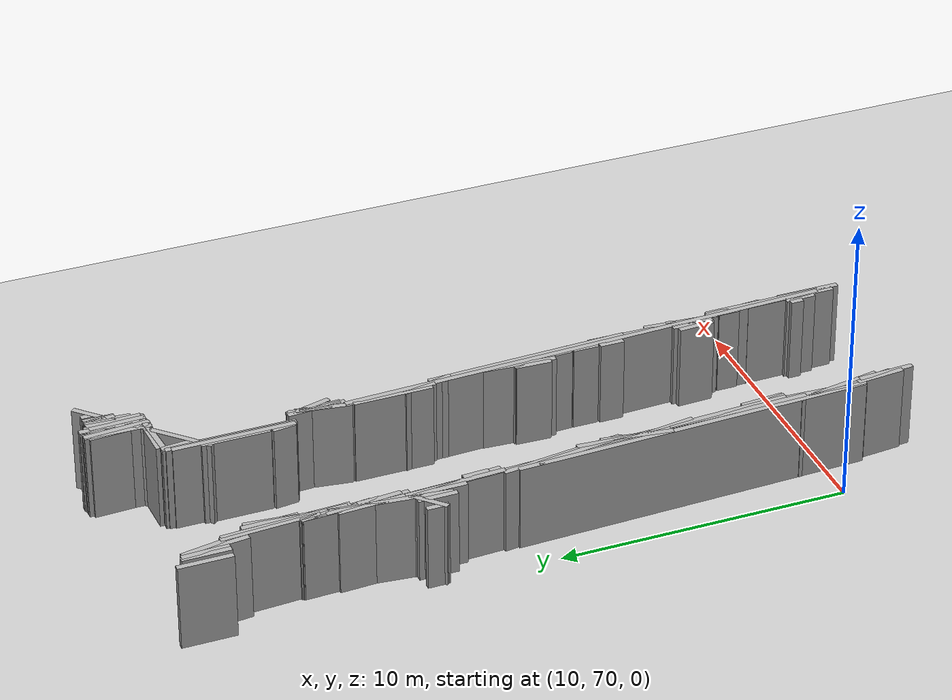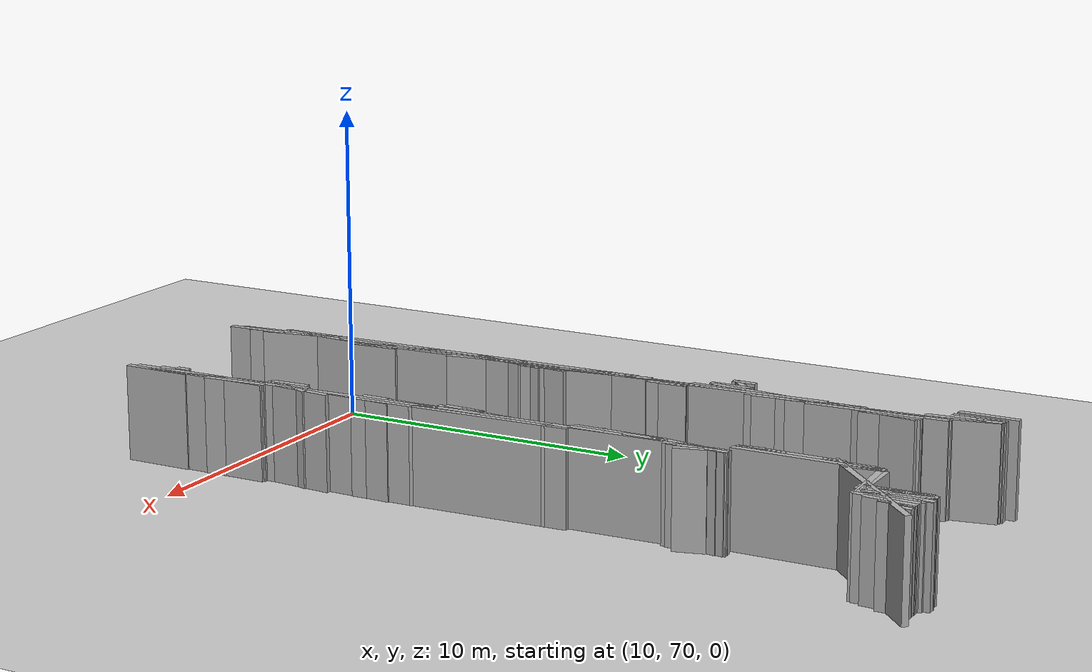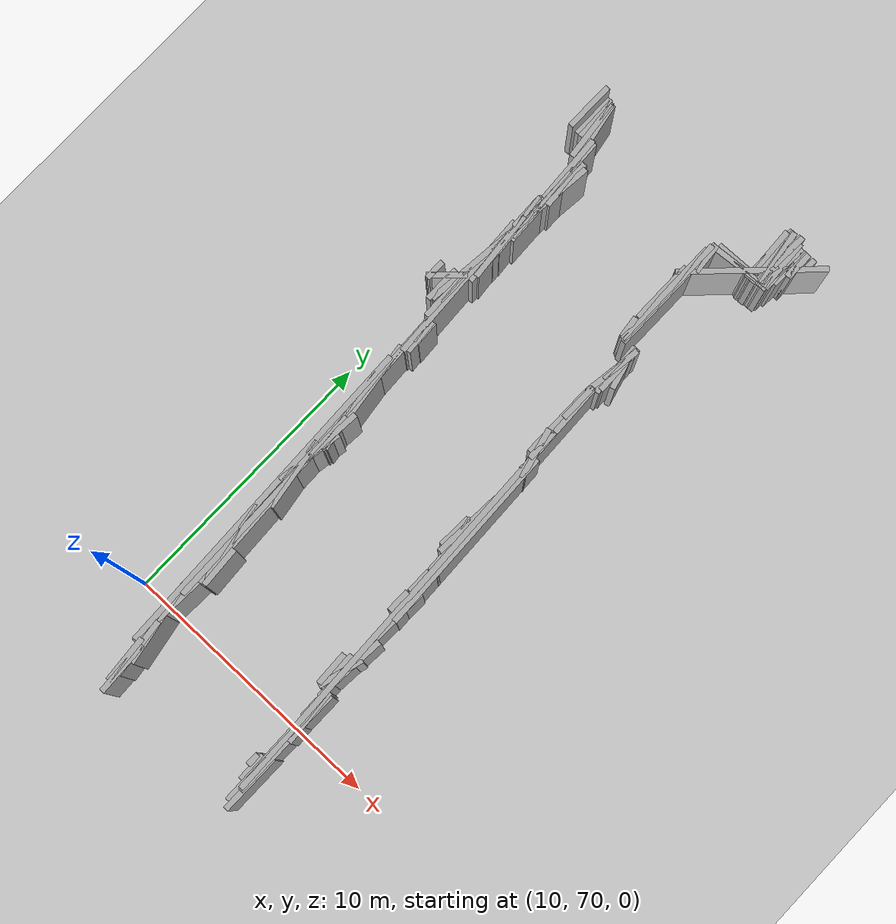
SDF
<sdf version="1.6">
 <world name="aboureyhan">
  <model name="ground_plane">
   <static>true</static>
   <link name="link">
    <collision name="collision">
     <geometry><plane><normal>0 0 1</normal><size>100 100</size></plane></geometry>
    </collision>
    <visual name="visual">
     <geometry><plane><normal>0 0 1</normal><size>500 500</size></plane></geometry>
     <material>
      <ambient>0.8 0.8 0.8 1</ambient>
      <diffuse>0.8 0.8 0.8 1</diffuse>
      <specular>0.8 0.8 0.8 1</specular>
     </material>
    </visual>
   </link>
  </model>
  <model name="wall_5">
   <static>true</static>
   <pose>11.900000000000002 67.67500000000001 1.5 0 0 -1.5195591593914772</pose>
   <link name="link">
    <collision name="collision">
     <geometry><box><size>1.9525624189766664 0.2 3.0</size></box></geometry>
    </collision>
    <visual name="visual">
     <geometry><box><size>1.9525624189766664 0.2 3.0</size></box></geometry>
     <material><ambient>0.5 0.5 0.5 1</ambient><diffuse>0.7 0.7 0.7 1</diffuse></material>
    </visual>
   </link>
  </model>
  <model name="wall_6">
   <static>true</static>
   <pose>17.05 76.175 1.5 0 0 -1.5360277349388143</pose>
   <link name="link">
    <collision name="collision">
     <geometry><box><size>17.260431628438496 0.2 3.0</size></box></geometry>
    </collision>
    <visual name="visual">
     <geometry><box><size>17.260431628438496 0.2 3.0</size></box></geometry>
     <material><ambient>0.5 0.5 0.5 1</ambient><diffuse>0.7 0.7 0.7 1</diffuse></material>
    </visual>
   </link>
  </model>
  <model name="wall_15">
   <static>true</static>
   <pose>17.125 78.275 1.5 0 0 -1.5353501865361818</pose>
   <link name="link">
    <collision name="collision"><geometry><box><size>7.054431231502647 0.2 3.0</size></box></geometry></collision>
    <visual name="visual">
     <geometry><box><size>7.054431231502647 0.2 3.0</size></box></geometry>
     <material><ambient>0.5 0.5 0.5 1</ambient><diffuse>0.7 0.7 0.7 1</diffuse></material>
    </visual>
   </link>
  </model>
  <model name="wall_35">
   <static>true</static>
   <pose>11.275 88.4 1.5 0 0 -1.5291537476963075</pose>
   <link name="link">
    <collision name="collision">
     <geometry><box><size>3.6031236448392883 0.2 3.0</size></box></geometry>
    </collision>
    <visual name="visual">
     <geometry><box><size>3.6031236448392883 0.2 3.0</size></box></geometry>
     <material><ambient>0.5 0.5 0.5 1</ambient><diffuse>0.7 0.7 0.7 1</diffuse></material>
    </visual>
   </link>
  </model>
  <model name="wall_40">
   <static>true</static>
   <pose>11.350000000000001 74.80000000000001 1.5 0 0 -1.5385494443596428</pose>
   <link name="link">
    <collision name="collision"><geometry><box><size>12.40644993541665 0.2 3.0</size></box></geometry></collision>
    <visual name="visual">
     <geometry><box><size>12.40644993541665 0.2 3.0</size></box></geometry>
     <material><ambient>0.5 0.5 0.5 1</ambient><diffuse>0.7 0.7 0.7 1</diffuse></material>
    </visual>
   </link>
  </model>
  <model name="wall_53">
   <static>true</static>
   <pose>11.375000000000002 89.25 1.5 0 0 -1.544486609541974</pose>
   <link name="link">
    <collision name="collision">
     <geometry><box><size>1.9006577808748268 0.2 3.0</size></box></geometry>
    </collision>
    <visual name="visual">
     <geometry><box><size>1.9006577808748268 0.2 3.0</size></box></geometry>
     <material><ambient>0.5 0.5 0.5 1</ambient><diffuse>0.7 0.7 0.7 1</diffuse></material>
    </visual>
   </link>
  </model>
  <model name="wall_55">
   <static>true</static>
   <pose>11.900000000000002 72.15 1.5 0 0 -1.504228163019072</pose>
   <link name="link">
    <collision name="collision"><geometry><box><size>1.503329637837291 0.2 3.0</size></box></geometry></collision>
    <visual name="visual">
     <geometry><box><size>1.503329637837291 0.2 3.0</size></box></geometry>
     <material><ambient>0.5 0.5 0.5 1</ambient><diffuse>0.7 0.7 0.7 1</diffuse></material>
    </visual>
   </link>
  </model>
  <model name="wall_63">
   <static>true</static>
   <pose>16.825000000000003 72.275 1.5 0 0 -1.530817639671606</pose>
   <link name="link">
    <collision name="collision">
     <geometry><box><size>1.2509996003196804 0.2 3.0</size></box></geometry>
    </collision>
    <visual name="visual">
     <geometry><box><size>1.2509996003196804 0.2 3.0</size></box></geometry>
     <material><ambient>0.5 0.5 0.5 1</ambient><diffuse>0.7 0.7 0.7 1</diffuse></material>
    </visual>
   </link>
  </model>
  <model name="wall_69">
   <static>true</static>
   <pose>11.425000000000002 79.4 1.5 0 0 -1.4405848838305002</pose>
   <link name="link">
    <collision name="collision"><geometry><box><size>4.235858826731603 0.2 3.0</size></box></geometry></collision>
    <visual name="visual">
     <geometry><box><size>4.235858826731603 0.2 3.0</size></box></geometry>
     <material><ambient>0.5 0.5 0.5 1</ambient><diffuse>0.7 0.7 0.7 1</diffuse></material>
    </visual>
   </link>
  </model>
  <model name="wall_99">
   <static>true</static>
   <pose>11.15 84.275 1.5 0 0 -1.5186696777492503</pose>
   <link name="link">
    <collision name="collision"><geometry><box><size>5.757820768311567 0.2 3.0</size></box></geometry></collision>
    <visual name="visual">
     <geometry><box><size>5.757820768311567 0.2 3.0</size></box></geometry>
     <material><ambient>0.5 0.5 0.5 1</ambient><diffuse>0.7 0.7 0.7 1</diffuse></material>
    </visual>
   </link>
  </model>
  <model name="wall_123">
   <static>true</static>
   <pose>10.725000000000001 91.22500000000001 1.5 0 0 -1.460139105621001</pose>
   <link name="link">
    <collision name="collision">
     <geometry><box><size>2.2638462845343543 0.2 3.0</size></box></geometry>
    </collision>
    <visual name="visual">
     <geometry><box><size>2.2638462845343543 0.2 3.0</size></box></geometry>
     <material><ambient>0.5 0.5 0.5 1</ambient><diffuse>0.7 0.7 0.7 1</diffuse></material>
    </visual>
   </link>
  </model>
  <model name="wall_131">
   <static>true</static>
   <pose>11.175 87.15 1.5 0 0 -1.4670039863378541</pose>
   <link name="link">
    <collision name="collision">
     <geometry><box><size>2.4129857024027364 0.2 3.0</size></box></geometry>
    </collision>
    <visual name="visual">
     <geometry><box><size>2.4129857024027364 0.2 3.0</size></box></geometry>
     <material><ambient>0.5 0.5 0.5 1</ambient><diffuse>0.7 0.7 0.7 1</diffuse></material>
    </visual>
   </link>
  </model>
  <model name="wall_160">
   <static>true</static>
   <pose>18.6 92.075 1.5 0 0 -1.5707963267948966</pose>
   <link name="link">
    <collision name="collision">
     <geometry><box><size>1.8500000000000227 0.2 3.0</size></box></geometry>
    </collision>
    <visual name="visual">
     <geometry><box><size>1.8500000000000227 0.2 3.0</size></box></geometry>
     <material><ambient>0.5 0.5 0.5 1</ambient><diffuse>0.7 0.7 0.7 1</diffuse></material>
    </visual>
   </link>
  </model>
  <model name="wall_170">
   <static>true</static>
   <pose>16.35 88.85 1.5 0 0 1.5707963267948966</pose>
   <link name="link">
    <collision name="collision">
     <geometry><box><size>4.3999999999999915 0.2 3.0</size></box></geometry>
    </collision>
    <visual name="visual">
     <geometry><box><size>4.3999999999999915 0.2 3.0</size></box></geometry>
     <material><ambient>0.5 0.5 0.5 1</ambient><diffuse>0.7 0.7 0.7 1</diffuse></material>
    </visual>
   </link>
  </model>
  <model name="wall_178">
   <static>true</static>
   <pose>11.05 83.75 1.5 0 0 -1.5707963267948966</pose>
   <link name="link">
    <collision name="collision">
     <geometry><box><size>1.9000000000000057 0.2 3.0</size></box></geometry>
    </collision>
    <visual name="visual">
     <geometry><box><size>1.9000000000000057 0.2 3.0</size></box></geometry>
     <material><ambient>0.5 0.5 0.5 1</ambient><diffuse>0.7 0.7 0.7 1</diffuse></material>
    </visual>
   </link>
  </model>
  <model name="wall_187">
   <static>true</static>
   <pose>18.275 92.225 1.5 0 0 1.5475447039844334</pose>
   <link name="link">
    <collision name="collision">
     <geometry><box><size>2.1505813167606624 0.2 3.0</size></box></geometry>
    </collision>
    <visual name="visual">
     <geometry><box><size>2.1505813167606624 0.2 3.0</size></box></geometry>
     <material><ambient>0.5 0.5 0.5 1</ambient><diffuse>0.7 0.7 0.7 1</diffuse></material>
    </visual>
   </link>
  </model>
  <model name="wall_194">
   <static>true</static>
   <pose>11.575000000000001 74.625 1.5 0 0 -1.5516903716764554</pose>
   <link name="link">
    <collision name="collision"><geometry><box><size>7.851432990225409 0.2 3.0</size></box></geometry></collision>
    <visual name="visual">
     <geometry><box><size>7.851432990225409 0.2 3.0</size></box></geometry>
     <material><ambient>0.5 0.5 0.5 1</ambient><diffuse>0.7 0.7 0.7 1</diffuse></material>
    </visual>
   </link>
  </model>
  <model name="wall_205">
   <static>true</static>
   <pose>17.400000000000002 69.575 1.5 0 0 1.5707963267948966</pose>
   <link name="link">
    <collision name="collision"><geometry><box><size>4.150000000000006 0.2 3.0</size></box></geometry></collision>
    <visual name="visual">
     <geometry><box><size>4.150000000000006 0.2 3.0</size></box></geometry>
     <material><ambient>0.5 0.5 0.5 1</ambient><diffuse>0.7 0.7 0.7 1</diffuse></material>
    </visual>
   </link>
  </model>
  <model name="wall_208">
   <static>true</static>
   <pose>16.200000000000003 87.1 1.5 0 0 -1.4464413322481373</pose>
   <link name="link">
    <collision name="collision">
     <geometry><box><size>0.8062257748298519 0.2 3.0</size></box></geometry>
    </collision>
    <visual name="visual">
     <geometry><box><size>0.8062257748298519 0.2 3.0</size></box></geometry>
     <material><ambient>0.5 0.5 0.5 1</ambient><diffuse>0.7 0.7 0.7 1</diffuse></material>
    </visual>
   </link>
  </model>
  <model name="wall_213">
   <static>true</static>
   <pose>18.85 92.47500000000001 1.5 0 0 -1.5707963267948966</pose>
   <link name="link">
    <collision name="collision">
     <geometry><box><size>1.0500000000000114 0.2 3.0</size></box></geometry>
    </collision>
    <visual name="visual">
     <geometry><box><size>1.0500000000000114 0.2 3.0</size></box></geometry>
     <material><ambient>0.5 0.5 0.5 1</ambient><diffuse>0.7 0.7 0.7 1</diffuse></material>
    </visual>
   </link>
  </model>
  <model name="wall_215">
   <static>true</static>
   <pose>16.800000000000004 85.65 1.5 0 0 1.428899272190732</pose>
   <link name="link">
    <collision name="collision"><geometry><box><size>2.121320343559637 0.2 3.0</size></box></geometry></collision>
    <visual name="visual">
     <geometry><box><size>2.121320343559637 0.2 3.0</size></box></geometry>
     <material><ambient>0.5 0.5 0.5 1</ambient><diffuse>0.7 0.7 0.7 1</diffuse></material>
    </visual>
   </link>
  </model>
  <model name="wall_220">
   <static>true</static>
   <pose>16.3 88.75 1.5 0 0 1.5707963267948966</pose>
   <link name="link">
    <collision name="collision"><geometry><box><size>4.200000000000003 0.2 3.0</size></box></geometry></collision>
    <visual name="visual">
     <geometry><box><size>4.200000000000003 0.2 3.0</size></box></geometry>
     <material><ambient>0.5 0.5 0.5 1</ambient><diffuse>0.7 0.7 0.7 1</diffuse></material>
    </visual>
   </link>
  </model>
  <model name="wall_229">
   <static>true</static>
   <pose>16.900000000000002 75.325 1.5 0 0 -1.5707963267948966</pose>
   <link name="link">
    <collision name="collision">
     <geometry><box><size>0.8499999999999943 0.2 3.0</size></box></geometry>
    </collision>
    <visual name="visual">
     <geometry><box><size>0.8499999999999943 0.2 3.0</size></box></geometry>
     <material><ambient>0.5 0.5 0.5 1</ambient><diffuse>0.7 0.7 0.7 1</diffuse></material>
    </visual>
   </link>
  </model>
  <model name="wall_232">
   <static>true</static>
   <pose>18.325000000000003 92.6 1.5 0 0 1.5350972141155723</pose>
   <link name="link">
    <collision name="collision">
     <geometry><box><size>1.4008925726121957 0.2 3.0</size></box></geometry>
    </collision>
    <visual name="visual">
     <geometry><box><size>1.4008925726121957 0.2 3.0</size></box></geometry>
     <material><ambient>0.5 0.5 0.5 1</ambient><diffuse>0.7 0.7 0.7 1</diffuse></material>
    </visual>
   </link>
  </model>
  <model name="wall_237">
   <static>true</static>
   <pose>16.85 85.75 1.5 0 0 -1.5208379310729532</pose>
   <link name="link">
    <collision name="collision">
     <geometry><box><size>2.0024984394500787 0.2 3.0</size></box></geometry>
    </collision>
    <visual name="visual">
     <geometry><box><size>2.0024984394500787 0.2 3.0</size></box></geometry>
     <material><ambient>0.5 0.5 0.5 1</ambient><diffuse>0.7 0.7 0.7 1</diffuse></material>
    </visual>
   </link>
  </model>
  <model name="wall_244">
   <static>true</static>
   <pose>11.55 76.0 1.5 0 0 -1.4181469983996318</pose>
   <link name="link">
    <collision name="collision"><geometry><box><size>2.630589287593175 0.2 3.0</size></box></geometry></collision>
    <visual name="visual">
     <geometry><box><size>2.630589287593175 0.2 3.0</size></box></geometry>
     <material><ambient>0.5 0.5 0.5 1</ambient><diffuse>0.7 0.7 0.7 1</diffuse></material>
    </visual>
   </link>
  </model>
  <model name="wall_245">
   <static>true</static>
   <pose>17.0 68.475 1.5 0 0 1.5707963267948966</pose>
   <link name="link">
    <collision name="collision">
     <geometry><box><size>0.45000000000000284 0.2 3.0</size></box></geometry>
    </collision>
    <visual name="visual">
     <geometry><box><size>0.45000000000000284 0.2 3.0</size></box></geometry>
     <material><ambient>0.5 0.5 0.5 1</ambient><diffuse>0.7 0.7 0.7 1</diffuse></material>
    </visual>
   </link>
  </model>
  <model name="wall_252">
   <static>true</static>
   <pose>16.650000000000002 83.175 1.5 0 0 1.5707963267948966</pose>
   <link name="link">
    <collision name="collision"><geometry><box><size>2.75 0.2 3.0</size></box></geometry></collision>
    <visual name="visual">
     <geometry><box><size>2.75 0.2 3.0</size></box></geometry>
     <material><ambient>0.5 0.5 0.5 1</ambient><diffuse>0.7 0.7 0.7 1</diffuse></material>
    </visual>
   </link>
  </model>
  <model name="wall_257">
   <static>true</static>
   <pose>18.5 92.075 1.5 0 0 -1.5220544754849663</pose>
   <link name="link">
    <collision name="collision">
     <geometry><box><size>2.0524375751773904 0.2 3.0</size></box></geometry>
    </collision>
    <visual name="visual">
     <geometry><box><size>2.0524375751773904 0.2 3.0</size></box></geometry>
     <material><ambient>0.5 0.5 0.5 1</ambient><diffuse>0.7 0.7 0.7 1</diffuse></material>
    </visual>
   </link>
  </model>
  <model name="wall_267">
   <static>true</static>
   <pose>17.925000000000004 92.12500000000001 1.5 0 0 1.5485777614681773</pose>
   <link name="link">
    <collision name="collision"><geometry><box><size>2.25055548698538 0.2 3.0</size></box></geometry></collision>
    <visual name="visual">
     <geometry><box><size>2.25055548698538 0.2 3.0</size></box></geometry>
     <material><ambient>0.5 0.5 0.5 1</ambient><diffuse>0.7 0.7 0.7 1</diffuse></material>
    </visual>
   </link>
  </model>
  <model name="wall_274">
   <static>true</static>
   <pose>16.675000000000004 78.22500000000001 1.5 0 0 1.530817639671606</pose>
   <link name="link">
    <collision name="collision">
     <geometry><box><size>1.2509996003196804 0.2 3.0</size></box></geometry>
    </collision>
    <visual name="visual">
     <geometry><box><size>1.2509996003196804 0.2 3.0</size></box></geometry>
     <material><ambient>0.5 0.5 0.5 1</ambient><diffuse>0.7 0.7 0.7 1</diffuse></material>
    </visual>
   </link>
  </model>
  <model name="wall_284">
   <static>true</static>
   <pose>11.225000000000001 86.2 1.5 0 0 -1.4749371796848831</pose>
   <link name="link">
    <collision name="collision">
     <geometry><box><size>2.6119915773217897 0.2 3.0</size></box></geometry>
    </collision>
    <visual name="visual">
     <geometry><box><size>2.6119915773217897 0.2 3.0</size></box></geometry>
     <material><ambient>0.5 0.5 0.5 1</ambient><diffuse>0.7 0.7 0.7 1</diffuse></material>
    </visual>
   </link>
  </model>
  <model name="wall_289">
   <static>true</static>
   <pose>11.650000000000002 72.9 1.5 0 0 -1.410883203636677</pose>
   <link name="link">
    <collision name="collision">
     <geometry><box><size>3.1400636936215105 0.2 3.0</size></box></geometry>
    </collision>
    <visual name="visual">
     <geometry><box><size>3.1400636936215105 0.2 3.0</size></box></geometry>
     <material><ambient>0.5 0.5 0.5 1</ambient><diffuse>0.7 0.7 0.7 1</diffuse></material>
    </visual>
   </link>
  </model>
  <model name="wall_291">
   <static>true</static>
   <pose>17.200000000000003 70.925 1.5 0 0 1.5707963267948966</pose>
   <link name="link">
    <collision name="collision"><geometry><box><size>0.75 0.2 3.0</size></box></geometry></collision>
    <visual name="visual">
     <geometry><box><size>0.75 0.2 3.0</size></box></geometry>
     <material><ambient>0.5 0.5 0.5 1</ambient><diffuse>0.7 0.7 0.7 1</diffuse></material>
    </visual>
   </link>
  </model>
  <model name="wall_301">
   <static>true</static>
   <pose>11.200000000000001 88.825 1.5 0 0 -1.5237721949521505</pose>
   <link name="link">
    <collision name="collision"><geometry><box><size>4.254703279900961 0.2 3.0</size></box></geometry></collision>
    <visual name="visual">
     <geometry><box><size>4.254703279900961 0.2 3.0</size></box></geometry>
     <material><ambient>0.5 0.5 0.5 1</ambient><diffuse>0.7 0.7 0.7 1</diffuse></material>
    </visual>
   </link>
  </model>
  <model name="wall_342">
   <static>true</static>
   <pose>16.400000000000002 88.875 1.5 0 0 1.5707963267948966</pose>
   <link name="link">
    <collision name="collision"><geometry><box><size>4.549999999999983 0.2 3.0</size></box></geometry></collision>
    <visual name="visual">
     <geometry><box><size>4.549999999999983 0.2 3.0</size></box></geometry>
     <material><ambient>0.5 0.5 0.5 1</ambient><diffuse>0.7 0.7 0.7 1</diffuse></material>
    </visual>
   </link>
  </model>
  <model name="wall_355">
   <static>true</static>
   <pose>17.0 72.325 1.5 0 0 -1.5707963267948966</pose>
   <link name="link">
    <collision name="collision">
     <geometry><box><size>1.4499999999999886 0.2 3.0</size></box></geometry>
    </collision>
    <visual name="visual">
     <geometry><box><size>1.4499999999999886 0.2 3.0</size></box></geometry>
     <material><ambient>0.5 0.5 0.5 1</ambient><diffuse>0.7 0.7 0.7 1</diffuse></material>
    </visual>
   </link>
  </model>
  <model name="wall_364">
   <static>true</static>
   <pose>18.75 92.22500000000001 1.5 0 0 1.506369487369345</pose>
   <link name="link">
    <collision name="collision"><geometry><box><size>1.553222456700918 0.2 3.0</size></box></geometry></collision>
    <visual name="visual">
     <geometry><box><size>1.553222456700918 0.2 3.0</size></box></geometry>
     <material><ambient>0.5 0.5 0.5 1</ambient><diffuse>0.7 0.7 0.7 1</diffuse></material>
    </visual>
   </link>
  </model>
  <model name="wall_374">
   <static>true</static>
   <pose>16.925000000000004 85.825 1.5 0 0 -1.5437758776076314</pose>
   <link name="link">
    <collision name="collision"><geometry><box><size>1.850675552332169 0.2 3.0</size></box></geometry></collision>
    <visual name="visual">
     <geometry><box><size>1.850675552332169 0.2 3.0</size></box></geometry>
     <material><ambient>0.5 0.5 0.5 1</ambient><diffuse>0.7 0.7 0.7 1</diffuse></material>
    </visual>
   </link>
  </model>
  <model name="wall_384">
   <static>true</static>
   <pose>11.425 78.75 1.5 0 0 -1.4266419396817411</pose>
   <link name="link">
    <collision name="collision">
     <geometry><box><size>3.1324910215354116 0.2 3.0</size></box></geometry>
    </collision>
    <visual name="visual">
     <geometry><box><size>3.1324910215354116 0.2 3.0</size></box></geometry>
     <material><ambient>0.5 0.5 0.5 1</ambient><diffuse>0.7 0.7 0.7 1</diffuse></material>
    </visual>
   </link>
  </model>
  <model name="wall_391">
   <static>true</static>
   <pose>10.600000000000001 84.275 1.5 0 0 0.7597627548757723</pose>
   <link name="link">
    <collision name="collision">
     <geometry><box><size>1.3793114224133742 0.2 3.0</size></box></geometry>
    </collision>
    <visual name="visual">
     <geometry><box><size>1.3793114224133742 0.2 3.0</size></box></geometry>
     <material><ambient>0.5 0.5 0.5 1</ambient><diffuse>0.7 0.7 0.7 1</diffuse></material>
    </visual>
   </link>
  </model>
  <model name="wall_423">
   <static>true</static>
   <pose>18.425000000000004 92.0 1.5 0 0 -1.544486609541974</pose>
   <link name="link">
    <collision name="collision">
     <geometry><box><size>1.9006577808748268 0.2 3.0</size></box></geometry>
    </collision>
    <visual name="visual">
     <geometry><box><size>1.9006577808748268 0.2 3.0</size></box></geometry>
     <material><ambient>0.5 0.5 0.5 1</ambient><diffuse>0.7 0.7 0.7 1</diffuse></material>
    </visual>
   </link>
  </model>
  <model name="wall_426">
   <static>true</static>
   <pose>16.925000000000004 77.825 1.5 0 0 -1.5475447039844334</pose>
   <link name="link">
    <collision name="collision">
     <geometry><box><size>2.1505813167606624 0.2 3.0</size></box></geometry>
    </collision>
    <visual name="visual">
     <geometry><box><size>2.1505813167606624 0.2 3.0</size></box></geometry>
     <material><ambient>0.5 0.5 0.5 1</ambient><diffuse>0.7 0.7 0.7 1</diffuse></material>
    </visual>
   </link>
  </model>
  <model name="wall_428">
   <static>true</static>
   <pose>18.075000000000003 92.12500000000001 1.5 0 0 -1.504228163019072</pose>
   <link name="link">
    <collision name="collision">
     <geometry><box><size>2.2549944567559366 0.2 3.0</size></box></geometry>
    </collision>
    <visual name="visual">
     <geometry><box><size>2.2549944567559366 0.2 3.0</size></box></geometry>
     <material><ambient>0.5 0.5 0.5 1</ambient><diffuse>0.7 0.7 0.7 1</diffuse></material>
    </visual>
   </link>
  </model>
  <model name="wall_433">
   <static>true</static>
   <pose>16.700000000000003 84.1 1.5 0 0 -1.5707963267948966</pose>
   <link name="link">
    <collision name="collision">
     <geometry><box><size>1.3999999999999915 0.2 3.0</size></box></geometry>
    </collision>
    <visual name="visual">
     <geometry><box><size>1.3999999999999915 0.2 3.0</size></box></geometry>
     <material><ambient>0.5 0.5 0.5 1</ambient><diffuse>0.7 0.7 0.7 1</diffuse></material>
    </visual>
   </link>
  </model>
  <model name="wall_438">
   <static>true</static>
   <pose>11.1 89.32500000000002 1.5 0 0 -1.5111656136637277</pose>
   <link name="link">
    <collision name="collision">
     <geometry><box><size>3.3559648389099754 0.2 3.0</size></box></geometry>
    </collision>
    <visual name="visual">
     <geometry><box><size>3.3559648389099754 0.2 3.0</size></box></geometry>
     <material><ambient>0.5 0.5 0.5 1</ambient><diffuse>0.7 0.7 0.7 1</diffuse></material>
    </visual>
   </link>
  </model>
  <model name="wall_446">
   <static>true</static>
   <pose>10.7 83.92500000000001 1.5 0 0 -1.5707963267948966</pose>
   <link name="link">
    <collision name="collision">
     <geometry><box><size>1.3500000000000085 0.2 3.0</size></box></geometry>
    </collision>
    <visual name="visual">
     <geometry><box><size>1.3500000000000085 0.2 3.0</size></box></geometry>
     <material><ambient>0.5 0.5 0.5 1</ambient><diffuse>0.7 0.7 0.7 1</diffuse></material>
    </visual>
   </link>
  </model>
  <model name="wall_473">
   <static>true</static>
   <pose>11.700000000000001 73.47500000000001 1.5 0 0 -1.5237721949521505</pose>
   <link name="link">
    <collision name="collision"><geometry><box><size>4.254703279900961 0.2 3.0</size></box></geometry></collision>
    <visual name="visual">
     <geometry><box><size>4.254703279900961 0.2 3.0</size></box></geometry>
     <material><ambient>0.5 0.5 0.5 1</ambient><diffuse>0.7 0.7 0.7 1</diffuse></material>
    </visual>
   </link>
  </model>
  <model name="wall_537">
   <static>true</static>
   <pose>11.200000000000001 86.525 1.5 0 0 -1.5175134752352042</pose>
   <link name="link">
    <collision name="collision">
     <geometry><box><size>3.7553295461250658 0.2 3.0</size></box></geometry>
    </collision>
    <visual name="visual">
     <geometry><box><size>3.7553295461250658 0.2 3.0</size></box></geometry>
     <material><ambient>0.5 0.5 0.5 1</ambient><diffuse>0.7 0.7 0.7 1</diffuse></material>
    </visual>
   </link>
  </model>
  <model name="wall_558">
   <static>true</static>
   <pose>16.8 82.25 1.5 0 0 1.5707963267948966</pose>
   <link name="link">
    <collision name="collision">
     <geometry><box><size>1.2000000000000028 0.2 3.0</size></box></geometry>
    </collision>
    <visual name="visual">
     <geometry><box><size>1.2000000000000028 0.2 3.0</size></box></geometry>
     <material><ambient>0.5 0.5 0.5 1</ambient><diffuse>0.7 0.7 0.7 1</diffuse></material>
    </visual>
   </link>
  </model>
  <model name="wall_562">
   <static>true</static>
   <pose>19.150000000000002 92.80000000000001 1.5 0 0 -1.5707963267948966</pose>
   <link name="link">
    <collision name="collision">
     <geometry><box><size>0.4000000000000057 0.2 3.0</size></box></geometry>
    </collision>
    <visual name="visual">
     <geometry><box><size>0.4000000000000057 0.2 3.0</size></box></geometry>
     <material><ambient>0.5 0.5 0.5 1</ambient><diffuse>0.7 0.7 0.7 1</diffuse></material>
    </visual>
   </link>
  </model>
  <model name="wall_565">
   <static>true</static>
   <pose>11.275 81.075 1.5 0 0 -1.5244718760942901</pose>
   <link name="link">
    <collision name="collision"><geometry><box><size>7.558108228915498 0.2 3.0</size></box></geometry></collision>
    <visual name="visual">
     <geometry><box><size>7.558108228915498 0.2 3.0</size></box></geometry>
     <material><ambient>0.5 0.5 0.5 1</ambient><diffuse>0.7 0.7 0.7 1</diffuse></material>
    </visual>
   </link>
  </model>
  <model name="wall_567">
   <static>true</static>
   <pose>17.525 91.125 1.5 0 0 0.07677189126978097</pose>
   <link name="link">
    <collision name="collision">
     <geometry><box><size>1.9557607215607944 0.2 3.0</size></box></geometry>
    </collision>
    <visual name="visual">
     <geometry><box><size>1.9557607215607944 0.2 3.0</size></box></geometry>
     <material><ambient>0.5 0.5 0.5 1</ambient><diffuse>0.7 0.7 0.7 1</diffuse></material>
    </visual>
   </link>
  </model>
  <model name="wall_570">
   <static>true</static>
   <pose>10.875000000000002 91.10000000000001 1.5 0 0 -1.3927033885636992</pose>
   <link name="link">
    <collision name="collision">
     <geometry><box><size>2.5401771591761073 0.2 3.0</size></box></geometry>
    </collision>
    <visual name="visual">
     <geometry><box><size>2.5401771591761073 0.2 3.0</size></box></geometry>
     <material><ambient>0.5 0.5 0.5 1</ambient><diffuse>0.7 0.7 0.7 1</diffuse></material>
    </visual>
   </link>
  </model>
  <model name="wall_573">
   <static>true</static>
   <pose>17.25 72.65 1.5 0 0 1.4940244355251187</pose>
   <link name="link">
    <collision name="collision">
     <geometry><box><size>2.6076809620810537 0.2 3.0</size></box></geometry>
    </collision>
    <visual name="visual">
     <geometry><box><size>2.6076809620810537 0.2 3.0</size></box></geometry>
     <material><ambient>0.5 0.5 0.5 1</ambient><diffuse>0.7 0.7 0.7 1</diffuse></material>
    </visual>
   </link>
  </model>
  <model name="wall_580">
   <static>true</static>
   <pose>11.075000000000001 87.65 1.5 0 0 -1.532353736773708</pose>
   <link name="link">
    <collision name="collision"><geometry><box><size>1.300961183125766 0.2 3.0</size></box></geometry></collision>
    <visual name="visual">
     <geometry><box><size>1.300961183125766 0.2 3.0</size></box></geometry>
     <material><ambient>0.5 0.5 0.5 1</ambient><diffuse>0.7 0.7 0.7 1</diffuse></material>
    </visual>
   </link>
  </model>
  <model name="wall_583">
   <static>true</static>
   <pose>18.900000000000002 92.47500000000001 1.5 0 0 1.5707963267948966</pose>
   <link name="link">
    <collision name="collision">
     <geometry><box><size>1.0500000000000114 0.2 3.0</size></box></geometry>
    </collision>
    <visual name="visual">
     <geometry><box><size>1.0500000000000114 0.2 3.0</size></box></geometry>
     <material><ambient>0.5 0.5 0.5 1</ambient><diffuse>0.7 0.7 0.7 1</diffuse></material>
    </visual>
   </link>
  </model>
  <model name="wall_584">
   <static>true</static>
   <pose>17.150000000000002 68.275 1.5 0 0 1.5707963267948966</pose>
   <link name="link">
    <collision name="collision">
     <geometry><box><size>1.0499999999999972 0.2 3.0</size></box></geometry>
    </collision>
    <visual name="visual">
     <geometry><box><size>1.0499999999999972 0.2 3.0</size></box></geometry>
     <material><ambient>0.5 0.5 0.5 1</ambient><diffuse>0.7 0.7 0.7 1</diffuse></material>
    </visual>
   </link>
  </model>
  <model name="wall_593">
   <static>true</static>
   <pose>16.975 77.80000000000001 1.5 0 0 -1.3690339824746085</pose>
   <link name="link">
    <collision name="collision"><geometry><box><size>2.245551157288565 0.2 3.0</size></box></geometry></collision>
    <visual name="visual">
     <geometry><box><size>2.245551157288565 0.2 3.0</size></box></geometry>
     <material><ambient>0.5 0.5 0.5 1</ambient><diffuse>0.7 0.7 0.7 1</diffuse></material>
    </visual>
   </link>
  </model>
  <model name="wall_594">
   <static>true</static>
   <pose>16.200000000000003 88.725 1.5 0 0 1.5707963267948966</pose>
   <link name="link">
    <collision name="collision">
     <geometry><box><size>2.3499999999999943 0.2 3.0</size></box></geometry>
    </collision>
    <visual name="visual">
     <geometry><box><size>2.3499999999999943 0.2 3.0</size></box></geometry>
     <material><ambient>0.5 0.5 0.5 1</ambient><diffuse>0.7 0.7 0.7 1</diffuse></material>
    </visual>
   </link>
  </model>
  <model name="wall_599">
   <static>true</static>
   <pose>16.950000000000003 76.25 1.5 0 0 1.5707963267948966</pose>
   <link name="link">
    <collision name="collision">
     <geometry><box><size>0.9000000000000057 0.2 3.0</size></box></geometry>
    </collision>
    <visual name="visual">
     <geometry><box><size>0.9000000000000057 0.2 3.0</size></box></geometry>
     <material><ambient>0.5 0.5 0.5 1</ambient><diffuse>0.7 0.7 0.7 1</diffuse></material>
    </visual>
   </link>
  </model>
  <model name="wall_609">
   <static>true</static>
   <pose>11.775000000000002 67.95 1.5 0 0 -1.482788953267156</pose>
   <link name="link">
    <collision name="collision">
     <geometry><box><size>1.7066048165875898 0.2 3.0</size></box></geometry>
    </collision>
    <visual name="visual">
     <geometry><box><size>1.7066048165875898 0.2 3.0</size></box></geometry>
     <material><ambient>0.5 0.5 0.5 1</ambient><diffuse>0.7 0.7 0.7 1</diffuse></material>
    </visual>
   </link>
  </model>
  <model name="wall_632">
   <static>true</static>
   <pose>17.450000000000003 67.85 1.5 0 0 1.5707963267948966</pose>
   <link name="link">
    <collision name="collision"><geometry><box><size>2.200000000000003 0.2 3.0</size></box></geometry></collision>
    <visual name="visual">
     <geometry><box><size>2.200000000000003 0.2 3.0</size></box></geometry>
     <material><ambient>0.5 0.5 0.5 1</ambient><diffuse>0.7 0.7 0.7 1</diffuse></material>
    </visual>
   </link>
  </model>
  <model name="wall_667">
   <static>true</static>
   <pose>11.675 70.175 1.5 0 0 1.5246752107803858</pose>
   <link name="link">
    <collision name="collision"><geometry><box><size>3.253459696999488 0.2 3.0</size></box></geometry></collision>
    <visual name="visual">
     <geometry><box><size>3.253459696999488 0.2 3.0</size></box></geometry>
     <material><ambient>0.5 0.5 0.5 1</ambient><diffuse>0.7 0.7 0.7 1</diffuse></material>
    </visual>
   </link>
  </model>
  <model name="wall_670">
   <static>true</static>
   <pose>16.825000000000003 78.67500000000001 1.5 0 0 1.5120405040791731</pose>
   <link name="link">
    <collision name="collision">
     <geometry><box><size>2.5544079548889576 0.2 3.0</size></box></geometry>
    </collision>
    <visual name="visual">
     <geometry><box><size>2.5544079548889576 0.2 3.0</size></box></geometry>
     <material><ambient>0.5 0.5 0.5 1</ambient><diffuse>0.7 0.7 0.7 1</diffuse></material>
    </visual>
   </link>
  </model>
  <model name="wall_673">
   <static>true</static>
   <pose>11.825000000000003 68.5 1.5 0 0 -1.4523063676367585</pose>
   <link name="link">
    <collision name="collision">
     <geometry><box><size>2.1148285982556545 0.2 3.0</size></box></geometry>
    </collision>
    <visual name="visual">
     <geometry><box><size>2.1148285982556545 0.2 3.0</size></box></geometry>
     <material><ambient>0.5 0.5 0.5 1</ambient><diffuse>0.7 0.7 0.7 1</diffuse></material>
    </visual>
   </link>
  </model>
  <model name="wall_681">
   <static>true</static>
   <pose>17.275 68.6 1.5 0 0 -1.5551725981744196</pose>
   <link name="link">
    <collision name="collision"><geometry><box><size>3.200390601161055 0.2 3.0</size></box></geometry></collision>
    <visual name="visual">
     <geometry><box><size>3.200390601161055 0.2 3.0</size></box></geometry>
     <material><ambient>0.5 0.5 0.5 1</ambient><diffuse>0.7 0.7 0.7 1</diffuse></material>
    </visual>
   </link>
  </model>
  <model name="wall_682">
   <static>true</static>
   <pose>16.5 90.575 1.5 0 0 -1.4840579881189115</pose>
   <link name="link">
    <collision name="collision">
     <geometry><box><size>1.1543396380614968 0.2 3.0</size></box></geometry>
    </collision>
    <visual name="visual">
     <geometry><box><size>1.1543396380614968 0.2 3.0</size></box></geometry>
     <material><ambient>0.5 0.5 0.5 1</ambient><diffuse>0.7 0.7 0.7 1</diffuse></material>
    </visual>
   </link>
  </model>
  <model name="wall_690">
   <static>true</static>
   <pose>11.4 82.15 1.5 0 0 -1.49402443552512</pose>
   <link name="link">
    <collision name="collision">
     <geometry><box><size>1.3038404810405269 0.2 3.0</size></box></geometry>
    </collision>
    <visual name="visual">
     <geometry><box><size>1.3038404810405269 0.2 3.0</size></box></geometry>
     <material><ambient>0.5 0.5 0.5 1</ambient><diffuse>0.7 0.7 0.7 1</diffuse></material>
    </visual>
   </link>
  </model>
  <model name="wall_701">
   <static>true</static>
   <pose>11.275 86.025 1.5 0 0 -1.504228163019072</pose>
   <link name="link">
    <collision name="collision">
     <geometry><box><size>0.7516648189186454 0.2 3.0</size></box></geometry>
    </collision>
    <visual name="visual">
     <geometry><box><size>0.7516648189186454 0.2 3.0</size></box></geometry>
     <material><ambient>0.5 0.5 0.5 1</ambient><diffuse>0.7 0.7 0.7 1</diffuse></material>
    </visual>
   </link>
  </model>
  <model name="wall_711">
   <static>true</static>
   <pose>17.5 91.22500000000001 1.5 0 0 0.02499479361892584</pose>
   <link name="link">
    <collision name="collision"><geometry><box><size>2.000624902374256 0.2 3.0</size></box></geometry></collision>
    <visual name="visual">
     <geometry><box><size>2.000624902374256 0.2 3.0</size></box></geometry>
     <material><ambient>0.5 0.5 0.5 1</ambient><diffuse>0.7 0.7 0.7 1</diffuse></material>
    </visual>
   </link>
  </model>
  <model name="wall_726">
   <static>true</static>
   <pose>10.45 91.625 1.5 0 0 1.5707963267948966</pose>
   <link name="link">
    <collision name="collision">
     <geometry><box><size>1.6500000000000057 0.2 3.0</size></box></geometry>
    </collision>
    <visual name="visual">
     <geometry><box><size>1.6500000000000057 0.2 3.0</size></box></geometry>
     <material><ambient>0.5 0.5 0.5 1</ambient><diffuse>0.7 0.7 0.7 1</diffuse></material>
    </visual>
   </link>
  </model>
  <model name="wall_734">
   <static>true</static>
   <pose>11.525000000000002 76.75 1.5 0 0 1.4259838285559574</pose>
   <link name="link">
    <collision name="collision">
     <geometry><box><size>2.4253865671269867 0.2 3.0</size></box></geometry>
    </collision>
    <visual name="visual">
     <geometry><box><size>2.4253865671269867 0.2 3.0</size></box></geometry>
     <material><ambient>0.5 0.5 0.5 1</ambient><diffuse>0.7 0.7 0.7 1</diffuse></material>
    </visual>
   </link>
  </model>
  <model name="wall_737">
   <static>true</static>
   <pose>16.875 81.5 1.5 0 0 1.4876550949064535</pose>
   <link name="link">
    <collision name="collision">
     <geometry><box><size>0.6020797289396091 0.2 3.0</size></box></geometry>
    </collision>
    <visual name="visual">
     <geometry><box><size>0.6020797289396091 0.2 3.0</size></box></geometry>
     <material><ambient>0.5 0.5 0.5 1</ambient><diffuse>0.7 0.7 0.7 1</diffuse></material>
    </visual>
   </link>
  </model>
  <model name="wall_762">
   <static>true</static>
   <pose>17.075000000000003 85.67500000000001 1.5 0 0 -1.3134726118238087</pose>
   <link name="link">
    <collision name="collision">
     <geometry><box><size>0.9823441352194278 0.2 3.0</size></box></geometry>
    </collision>
    <visual name="visual">
     <geometry><box><size>0.9823441352194278 0.2 3.0</size></box></geometry>
     <material><ambient>0.5 0.5 0.5 1</ambient><diffuse>0.7 0.7 0.7 1</diffuse></material>
    </visual>
   </link>
  </model>
  <model name="wall_763">
   <static>true</static>
   <pose>11.15 86.72500000000001 1.5 0 0 1.4674620015730022</pose>
   <link name="link">
    <collision name="collision">
     <geometry><box><size>6.7861992307918575 0.2 3.0</size></box></geometry>
    </collision>
    <visual name="visual">
     <geometry><box><size>6.7861992307918575 0.2 3.0</size></box></geometry>
     <material><ambient>0.5 0.5 0.5 1</ambient><diffuse>0.7 0.7 0.7 1</diffuse></material>
    </visual>
   </link>
  </model>
  <model name="wall_767">
   <static>true</static>
   <pose>17.200000000000003 73.85 1.5 0 0 1.5475447039844341</pose>
   <link name="link">
    <collision name="collision"><geometry><box><size>4.301162633521311 0.2 3.0</size></box></geometry></collision>
    <visual name="visual">
     <geometry><box><size>4.301162633521311 0.2 3.0</size></box></geometry>
     <material><ambient>0.5 0.5 0.5 1</ambient><diffuse>0.7 0.7 0.7 1</diffuse></material>
    </visual>
   </link>
  </model>
  <model name="wall_779">
   <static>true</static>
   <pose>17.900000000000002 92.05000000000001 1.5 0 0 -1.5232132235179123</pose>
   <link name="link">
    <collision name="collision">
     <geometry><box><size>2.1023796041628584 0.2 3.0</size></box></geometry>
    </collision>
    <visual name="visual">
     <geometry><box><size>2.1023796041628584 0.2 3.0</size></box></geometry>
     <material><ambient>0.5 0.5 0.5 1</ambient><diffuse>0.7 0.7 0.7 1</diffuse></material>
    </visual>
   </link>
  </model>
  <model name="wall_790">
   <static>true</static>
   <pose>18.225 92.15 1.5 0 0 -1.4130275891989432</pose>
   <link name="link">
    <collision name="collision">
     <geometry><box><size>2.2276669409945637 0.2 3.0</size></box></geometry>
    </collision>
    <visual name="visual">
     <geometry><box><size>2.2276669409945637 0.2 3.0</size></box></geometry>
     <material><ambient>0.5 0.5 0.5 1</ambient><diffuse>0.7 0.7 0.7 1</diffuse></material>
    </visual>
   </link>
  </model>
  <model name="wall_797">
   <static>true</static>
   <pose>11.425 82.35 1.5 0 0 -1.5152978215491824</pose>
   <link name="link">
    <collision name="collision">
     <geometry><box><size>0.9013878188659886 0.2 3.0</size></box></geometry>
    </collision>
    <visual name="visual">
     <geometry><box><size>0.9013878188659886 0.2 3.0</size></box></geometry>
     <material><ambient>0.5 0.5 0.5 1</ambient><diffuse>0.7 0.7 0.7 1</diffuse></material>
    </visual>
   </link>
  </model>
  <model name="wall_823">
   <static>true</static>
   <pose>11.725 69.5 1.5 0 0 -1.389476552393406</pose>
   <link name="link">
    <collision name="collision"><geometry><box><size>3.05 0.2 3.0</size></box></geometry></collision>
    <visual name="visual">
     <geometry><box><size>3.05 0.2 3.0</size></box></geometry>
     <material><ambient>0.5 0.5 0.5 1</ambient><diffuse>0.7 0.7 0.7 1</diffuse></material>
    </visual>
   </link>
  </model>
  <model name="wall_833">
   <static>true</static>
   <pose>17.125 72.375 1.5 0 0 1.2882413743253092</pose>
   <link name="link">
    <collision name="collision">
     <geometry><box><size>1.6140012391568943 0.2 3.0</size></box></geometry>
    </collision>
    <visual name="visual">
     <geometry><box><size>1.6140012391568943 0.2 3.0</size></box></geometry>
     <material><ambient>0.5 0.5 0.5 1</ambient><diffuse>0.7 0.7 0.7 1</diffuse></material>
    </visual>
   </link>
  </model>
  <model name="wall_843">
   <static>true</static>
   <pose>10.2 84.125 1.5 0 0 1.5707963267948966</pose>
   <link name="link">
    <collision name="collision"><geometry><box><size>0.75 0.2 3.0</size></box></geometry></collision>
    <visual name="visual">
     <geometry><box><size>0.75 0.2 3.0</size></box></geometry>
     <material><ambient>0.5 0.5 0.5 1</ambient><diffuse>0.7 0.7 0.7 1</diffuse></material>
    </visual>
   </link>
  </model>
  <model name="wall_884">
   <static>true</static>
   <pose>10.575000000000001 91.6 1.5 0 0 -1.5395564933646277</pose>
   <link name="link">
    <collision name="collision">
     <geometry><box><size>1.6007810593582066 0.2 3.0</size></box></geometry>
    </collision>
    <visual name="visual">
     <geometry><box><size>1.6007810593582066 0.2 3.0</size></box></geometry>
     <material><ambient>0.5 0.5 0.5 1</ambient><diffuse>0.7 0.7 0.7 1</diffuse></material>
    </visual>
   </link>
  </model>
  <model name="wall_889">
   <static>true</static>
   <pose>16.875 85.85 1.5 0 0 1.4464413322481338</pose>
   <link name="link">
    <collision name="collision">
     <geometry><box><size>1.2093386622447855 0.2 3.0</size></box></geometry>
    </collision>
    <visual name="visual">
     <geometry><box><size>1.2093386622447855 0.2 3.0</size></box></geometry>
     <material><ambient>0.5 0.5 0.5 1</ambient><diffuse>0.7 0.7 0.7 1</diffuse></material>
    </visual>
   </link>
  </model>
  <model name="wall_895">
   <static>true</static>
   <pose>17.375 70.67500000000001 1.5 0 0 -1.4977557614917762</pose>
   <link name="link">
    <collision name="collision"><geometry><box><size>2.055480479109444 0.2 3.0</size></box></geometry></collision>
    <visual name="visual">
     <geometry><box><size>2.055480479109444 0.2 3.0</size></box></geometry>
     <material><ambient>0.5 0.5 0.5 1</ambient><diffuse>0.7 0.7 0.7 1</diffuse></material>
    </visual>
   </link>
  </model>
  <model name="wall_941">
   <static>true</static>
   <pose>18.200000000000003 92.1 1.5 0 0 -1.428899272190732</pose>
   <link name="link">
    <collision name="collision"><geometry><box><size>2.121320343559637 0.2 3.0</size></box></geometry></collision>
    <visual name="visual">
     <geometry><box><size>2.121320343559637 0.2 3.0</size></box></geometry>
     <material><ambient>0.5 0.5 0.5 1</ambient><diffuse>0.7 0.7 0.7 1</diffuse></material>
    </visual>
   </link>
  </model>
  <model name="wall_954">
   <static>true</static>
   <pose>11.525000000000002 77.175 1.5 0 0 1.4940244355251187</pose>
   <link name="link">
    <collision name="collision">
     <geometry><box><size>3.2596012026013246 0.2 3.0</size></box></geometry>
    </collision>
    <visual name="visual">
     <geometry><box><size>3.2596012026013246 0.2 3.0</size></box></geometry>
     <material><ambient>0.5 0.5 0.5 1</ambient><diffuse>0.7 0.7 0.7 1</diffuse></material>
    </visual>
   </link>
  </model>
  <model name="wall_968">
   <static>true</static>
   <pose>16.825000000000003 81.9 1.5 0 0 -1.3258176636680326</pose>
   <link name="link">
    <collision name="collision">
     <geometry><box><size>1.8553975315279443 0.2 3.0</size></box></geometry>
    </collision>
    <visual name="visual">
     <geometry><box><size>1.8553975315279443 0.2 3.0</size></box></geometry>
     <material><ambient>0.5 0.5 0.5 1</ambient><diffuse>0.7 0.7 0.7 1</diffuse></material>
    </visual>
   </link>
  </model>
  <model name="wall_982">
   <static>true</static>
   <pose>17.875 91.325 1.5 0 0 0.7715101674664826</pose>
   <link name="link">
    <collision name="collision"><geometry><box><size>5.091659847240396 0.2 3.0</size></box></geometry></collision>
    <visual name="visual">
     <geometry><box><size>5.091659847240396 0.2 3.0</size></box></geometry>
     <material><ambient>0.5 0.5 0.5 1</ambient><diffuse>0.7 0.7 0.7 1</diffuse></material>
    </visual>
   </link>
  </model>
  <model name="wall_983">
   <static>true</static>
   <pose>18.775 92.62500000000001 1.5 0 0 -1.504228163019072</pose>
   <link name="link">
    <collision name="collision">
     <geometry><box><size>0.7516648189186454 0.2 3.0</size></box></geometry>
    </collision>
    <visual name="visual">
     <geometry><box><size>0.7516648189186454 0.2 3.0</size></box></geometry>
     <material><ambient>0.5 0.5 0.5 1</ambient><diffuse>0.7 0.7 0.7 1</diffuse></material>
    </visual>
   </link>
  </model>
  <model name="wall_987">
   <static>true</static>
   <pose>10.100000000000001 91.775 1.5 0 0 1.5707963267948966</pose>
   <link name="link">
    <collision name="collision">
     <geometry><box><size>1.8499999999999943 0.2 3.0</size></box></geometry>
    </collision>
    <visual name="visual">
     <geometry><box><size>1.8499999999999943 0.2 3.0</size></box></geometry>
     <material><ambient>0.5 0.5 0.5 1</ambient><diffuse>0.7 0.7 0.7 1</diffuse></material>
    </visual>
   </link>
  </model>
 </world>
</sdf>
